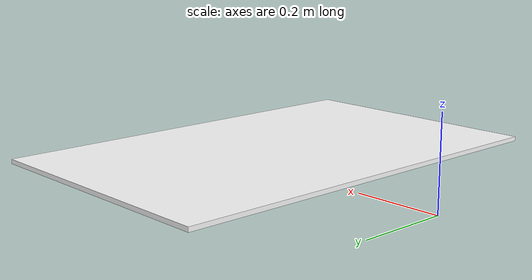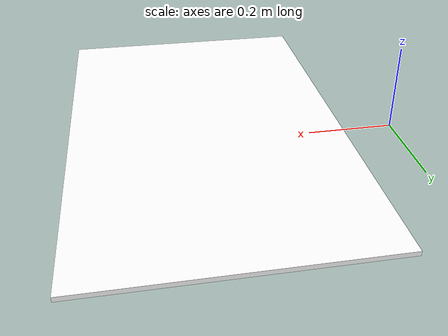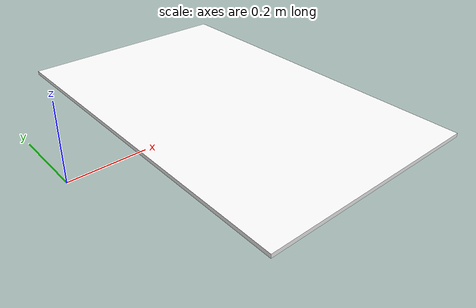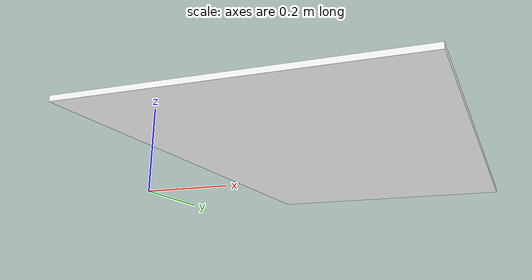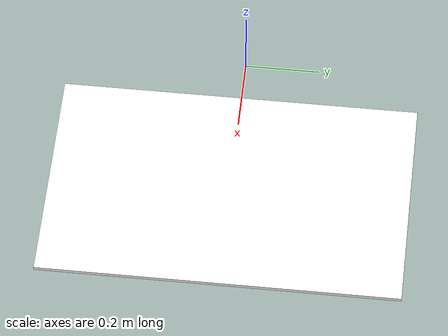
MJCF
<mujoco model="table">
    <asset>
        <material name="table" specular="0.8" shininess="0.2" texrepeat="1 1" rgba="1 1 1 1"/>
    </asset>
    <worldbody>
        <!-- Table is a bit higher up 11mm -->
        <body name="table" pos="0.45 0 0.041" >
            <geom name="table" pos="0 0 0.005" size="0.301 0.475 0.005" material="table" rgba="1 1 1 1" type="box" margin="0"/>
        </body>
    </worldbody>
</mujoco>
